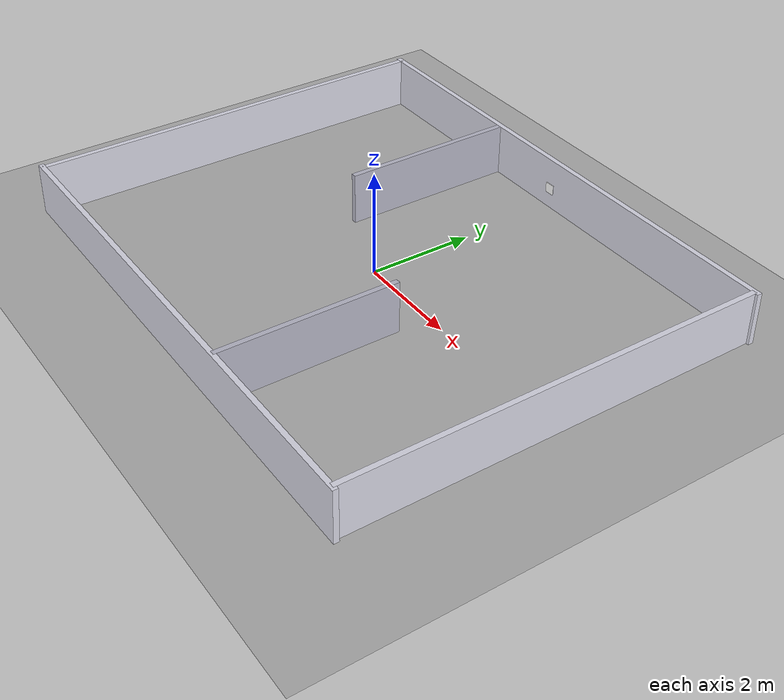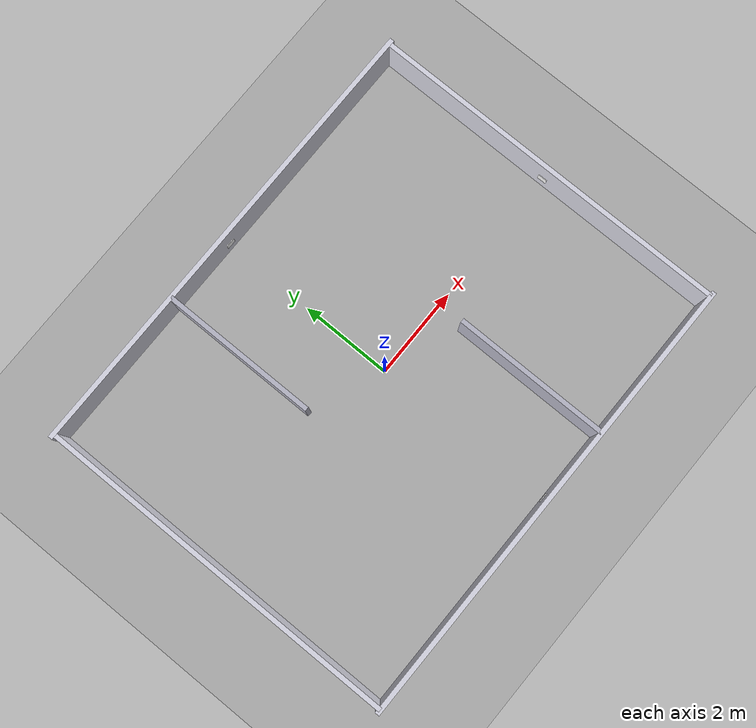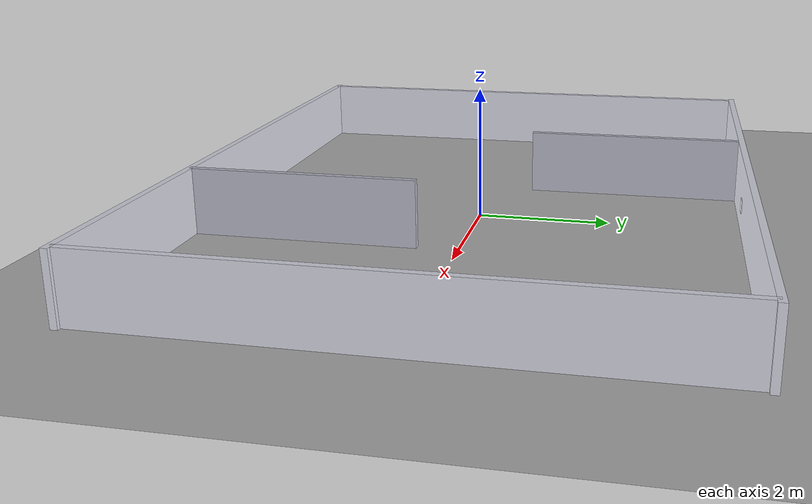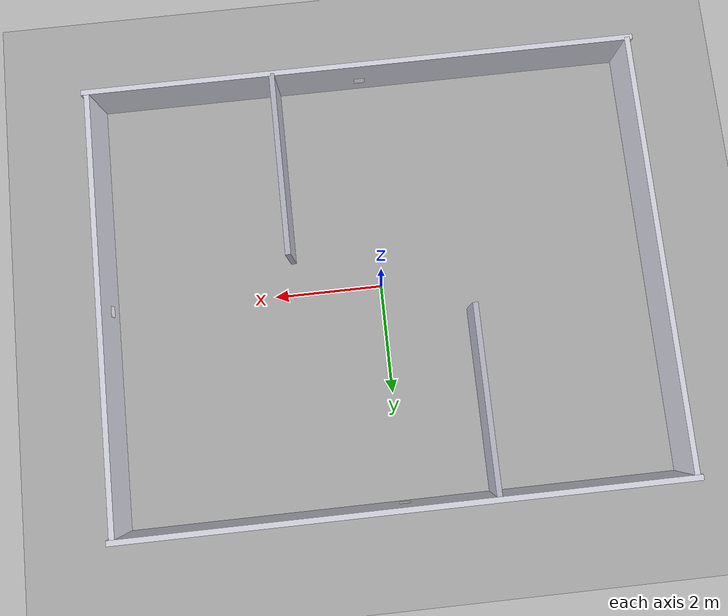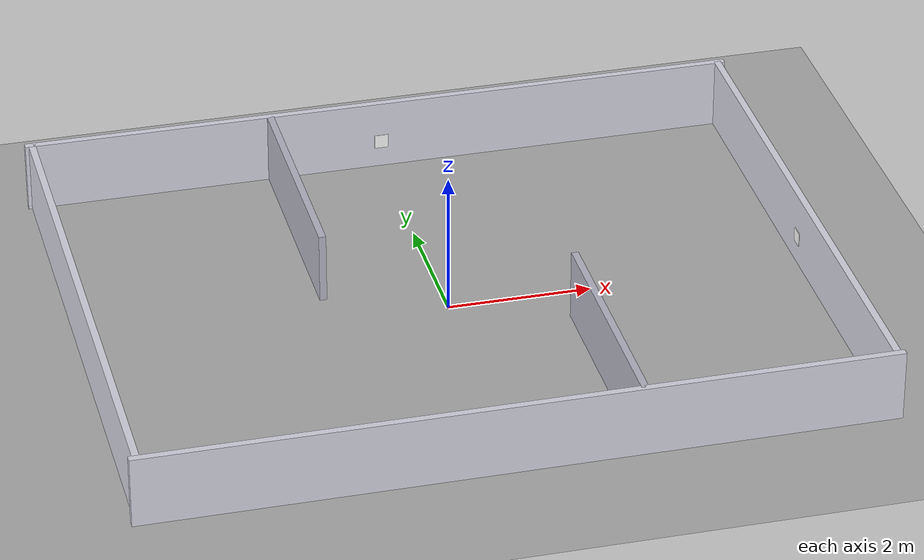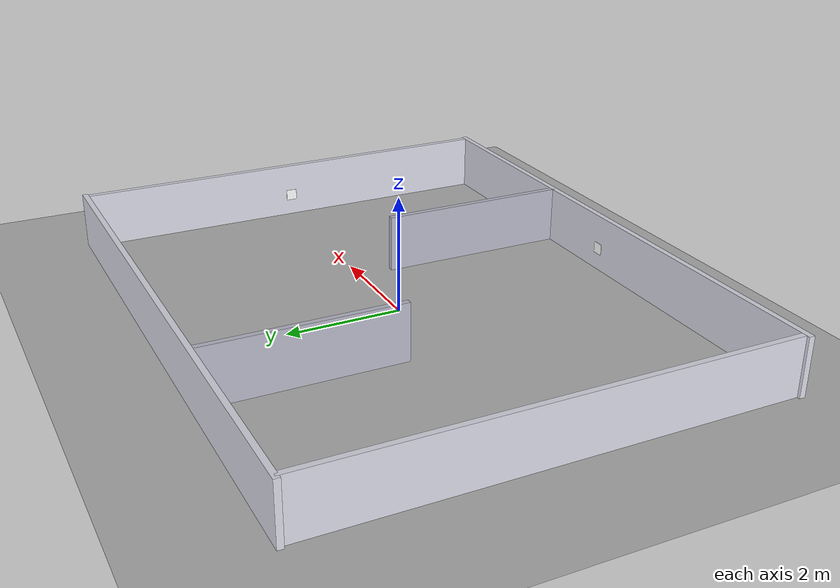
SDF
<?xml version="1.0"?>
<sdf version="1.8">
  <world name="leader_follower">

    <scene>
      <ambient>0.9 0.9 0.9 1</ambient>
      <background>0.8 0.85 0.9 1</background>
      <shadows>false</shadows>
    </scene>

    <!-- 2 ms step instead of 1: half the physics steps for the same amount
         of simulated time, and stable with two differential-drive robots -->
    <physics type="ode">
      <max_step_size>0.002</max_step_size>
      <real_time_factor>1</real_time_factor>
    </physics>

    <plugin filename="gz-sim-physics-system" name="gz::sim::systems::Physics"/>
    <plugin filename="gz-sim-user-commands-system" name="gz::sim::systems::UserCommands"/>
    <plugin filename="gz-sim-scene-broadcaster-system" name="gz::sim::systems::SceneBroadcaster"/>
    <plugin filename="gz-sim-sensors-system" name="gz::sim::systems::Sensors">
      <render_engine>ogre2</render_engine>
    </plugin>
    <plugin filename="gz-sim-imu-system" name="gz::sim::systems::Imu"/>

    <light type="directional" name="sun">
      <cast_shadows>false</cast_shadows>
      <pose>0 0 10 0 0 0</pose>
      <diffuse>0.75 0.75 0.75 1</diffuse>
      <specular>0.2 0.2 0.2 1</specular>
      <direction>0.3 0.2 -0.9</direction>
    </light>

    <model name="ground">
      <static>true</static>
      <link name="link">
        <collision name="c">
          <geometry><plane><normal>0 0 1</normal><size>40 40</size></plane></geometry>
        </collision>
        <visual name="v">
          <geometry><plane><normal>0 0 1</normal><size>40 40</size></plane></geometry>
          <material>
            <ambient>0.68 0.68 0.68 1</ambient>
            <diffuse>0.68 0.68 0.68 1</diffuse>
          </material>
        </visual>
      </link>
    </model>

    <model name="wall_north">
      <static>true</static>
      <link name="link">
        <pose>0 4.0 0.5 0 0 0</pose>
        <visual name="v">
          <geometry><box><size>10.2 0.1 1.0</size></box></geometry>
          <material>
            <ambient>0.85 0.85 0.9 1</ambient>
            <diffuse>0.85 0.85 0.9 1</diffuse>
          </material>
        </visual>
        <collision name="c">
          <geometry><box><size>10.2 0.1 1.0</size></box></geometry>
        </collision>
      </link>
    </model>
    <model name="wall_south">
      <static>true</static>
      <link name="link">
        <pose>0 -4.0 0.5 0 0 0</pose>
        <visual name="v">
          <geometry><box><size>10.2 0.1 1.0</size></box></geometry>
          <material>
            <ambient>0.85 0.85 0.9 1</ambient>
            <diffuse>0.85 0.85 0.9 1</diffuse>
          </material>
        </visual>
        <collision name="c">
          <geometry><box><size>10.2 0.1 1.0</size></box></geometry>
        </collision>
      </link>
    </model>
    <model name="wall_east">
      <static>true</static>
      <link name="link">
        <pose>5.0 0 0.5 0 0 0</pose>
        <visual name="v">
          <geometry><box><size>0.1 8.0 1.0</size></box></geometry>
          <material>
            <ambient>0.85 0.85 0.9 1</ambient>
            <diffuse>0.85 0.85 0.9 1</diffuse>
          </material>
        </visual>
        <collision name="c">
          <geometry><box><size>0.1 8.0 1.0</size></box></geometry>
        </collision>
      </link>
    </model>
    <model name="wall_west">
      <static>true</static>
      <link name="link">
        <pose>-5.0 0 0.5 0 0 0</pose>
        <visual name="v">
          <geometry><box><size>0.1 8.0 1.0</size></box></geometry>
          <material>
            <ambient>0.85 0.85 0.9 1</ambient>
            <diffuse>0.85 0.85 0.9 1</diffuse>
          </material>
        </visual>
        <collision name="c">
          <geometry><box><size>0.1 8.0 1.0</size></box></geometry>
        </collision>
      </link>
    </model>
    <model name="chicane_0">
      <static>true</static>
      <link name="link">
        <pose>-1.6 2.3 0.5 0 0 0</pose>
        <visual name="v">
          <geometry><box><size>0.1 3.4 1.0</size></box></geometry>
          <material>
            <ambient>0.72 0.72 0.78 1</ambient>
            <diffuse>0.72 0.72 0.78 1</diffuse>
          </material>
        </visual>
        <collision name="c">
          <geometry><box><size>0.1 3.4 1.0</size></box></geometry>
        </collision>
      </link>
    </model>
    <model name="chicane_1">
      <static>true</static>
      <link name="link">
        <pose>1.6 -2.3 0.5 0 0 0</pose>
        <visual name="v">
          <geometry><box><size>0.1 3.4 1.0</size></box></geometry>
          <material>
            <ambient>0.72 0.72 0.78 1</ambient>
            <diffuse>0.72 0.72 0.78 1</diffuse>
          </material>
        </visual>
        <collision name="c">
          <geometry><box><size>0.1 3.4 1.0</size></box></geometry>
        </collision>
      </link>
    </model>
    <include>
      <name>aruco_marker_0</name>
      <uri>model://aruco_marker_0</uri>
      <pose>0.0 -3.94 0.4 0 0 0.0</pose>
    </include>
    <include>
      <name>aruco_marker_1</name>
      <uri>model://aruco_marker_1</uri>
      <pose>0.0 3.94 0.4 0 0 0.0</pose>
    </include>
    <include>
      <name>aruco_marker_2</name>
      <uri>model://aruco_marker_2</uri>
      <pose>4.94 0.0 0.4 0 0 1.5708</pose>
    </include>

  </world>
</sdf>

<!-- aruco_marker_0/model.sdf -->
<sdf version="1.8">
  <model name="aruco_marker_0">
    <static>true</static>
    <link name="link">
      <visual name="visual">
        <cast_shadows>false</cast_shadows>
        <geometry><box><size>0.2 0.01 0.2</size></box></geometry>
        <material>
          <diffuse>1 1 1 1</diffuse><ambient>1 1 1 1</ambient>
          <pbr><metal>
            <albedo_map>materials/textures/marker_0.png</albedo_map>
            <roughness>1.0</roughness><metalness>0.0</metalness>
          </metal></pbr>
        </material>
      </visual>
      <collision name="collision">
        <geometry><box><size>0.2 0.01 0.2</size></box></geometry>
      </collision>
    </link>
  </model>
</sdf>

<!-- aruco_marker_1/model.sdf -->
<sdf version="1.8">
  <model name="aruco_marker_1">
    <static>true</static>
    <link name="link">
      <visual name="visual">
        <cast_shadows>false</cast_shadows>
        <geometry><box><size>0.2 0.01 0.2</size></box></geometry>
        <material>
          <diffuse>1 1 1 1</diffuse><ambient>1 1 1 1</ambient>
          <pbr><metal>
            <albedo_map>materials/textures/marker_1.png</albedo_map>
            <roughness>1.0</roughness><metalness>0.0</metalness>
          </metal></pbr>
        </material>
      </visual>
      <collision name="collision">
        <geometry><box><size>0.2 0.01 0.2</size></box></geometry>
      </collision>
    </link>
  </model>
</sdf>

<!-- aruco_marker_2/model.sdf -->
<sdf version="1.8">
  <model name="aruco_marker_2">
    <static>true</static>
    <link name="link">
      <visual name="visual">
        <cast_shadows>false</cast_shadows>
        <geometry><box><size>0.2 0.01 0.2</size></box></geometry>
        <material>
          <diffuse>1 1 1 1</diffuse><ambient>1 1 1 1</ambient>
          <pbr><metal>
            <albedo_map>materials/textures/marker_2.png</albedo_map>
            <roughness>1.0</roughness><metalness>0.0</metalness>
          </metal></pbr>
        </material>
      </visual>
      <collision name="collision">
        <geometry><box><size>0.2 0.01 0.2</size></box></geometry>
      </collision>
    </link>
  </model>
</sdf>
